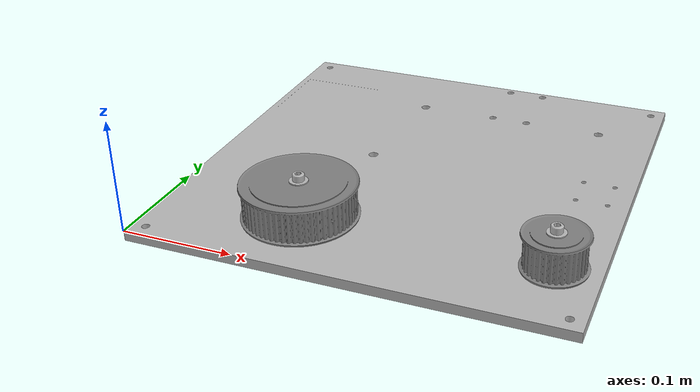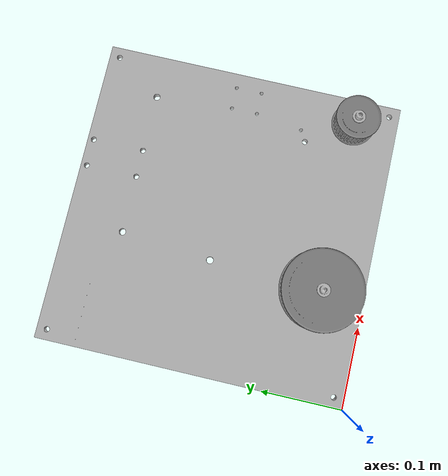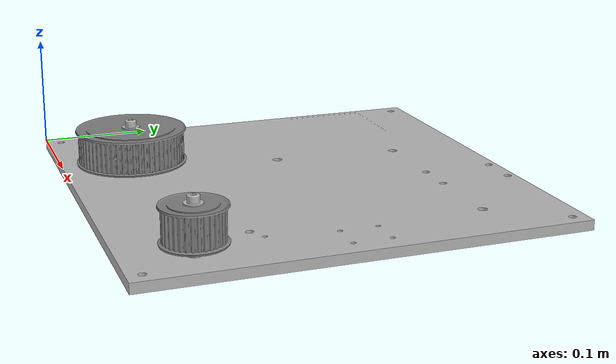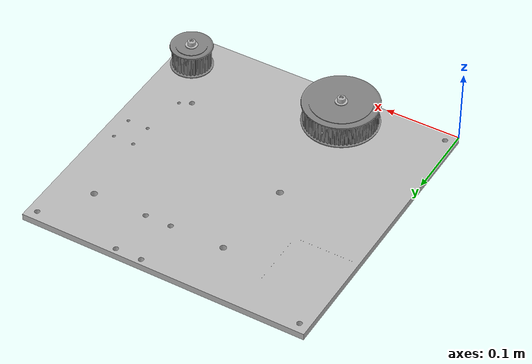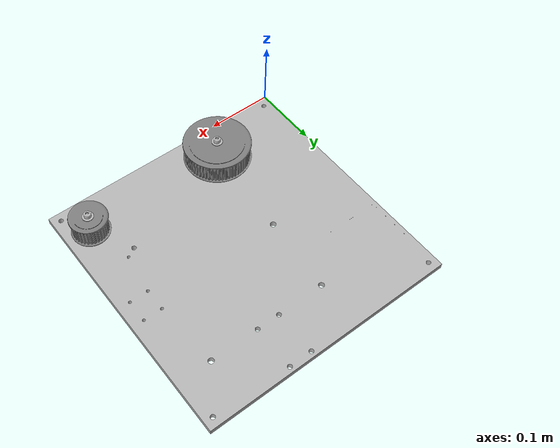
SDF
<?xml version='1.0' encoding='UTF-8'?>
<sdf version="1.7">
  <model name="timing_belt_task_board">
    <link name="board">
      <visual name="board">
        <pose>0 0 0 0 0 0</pose>
        <geometry>
          <mesh>
            <uri>timing_belt_task_board.obj</uri>
          </mesh>
        </geometry>
      </visual>
      <collision name="board_collision">
        <pose>0.192 0.192 -0.005 0 0 0</pose>
        <geometry>
          <box>
            <size>0.384 0.384 0.01</size>
          </box>
        </geometry>
        <drake:proximity_properties>
          <drake:mu_dynamic>1.5</drake:mu_dynamic>
          <drake:mu_static>1.5</drake:mu_static>
          <drake:hydroelastic_modulus>1e6</drake:hydroelastic_modulus>
          <drake:hunt_crossley_dissipation>5</drake:hunt_crossley_dissipation>
          <drake:compliant_hydroelastic/>
        </drake:proximity_properties>
      </collision>
    </link>
    <link name="small_timing_pulley">
      <inertial>
        <pose>0 0 0 0 0 0</pose>
        <mass>0.3</mass>
        <inertia>
          <ixx>3.06677e-05</ixx>
          <iyy>3.0667375e-05</iyy>
          <izz>6.0454911e-05</izz>
          <ixy>5.7518697e-14</ixy>
          <ixz>1.6724428e-11</ixz>
          <iyz>-1.9003215e-11</iyz>
        </inertia>
      </inertial>
      <visual name="small_timing_pulley">
        <pose>0.348 0.058 0.041 0 0 0</pose>
        <geometry>
          <mesh>
            <uri>timing_belt_small_pulley.obj</uri>
          </mesh>
        </geometry>
        <material>
          <diffuse>0.5 0.5 0.5 1</diffuse>
        </material>
      </visual>
      <collision name="small_timing_pulley_body">
        <pose>0.348 0.058 0.025 0 0 0</pose>
        <geometry>
          <cylinder>
            <length>0.027</length>
            <radius>0.02505</radius>
          </cylinder>
        </geometry>
        <drake:proximity_properties>
          <drake:mu_dynamic>1.5</drake:mu_dynamic>
          <drake:mu_static>1.5</drake:mu_static>
          <drake:hydroelastic_modulus>1e6</drake:hydroelastic_modulus>
          <drake:hunt_crossley_dissipation>5</drake:hunt_crossley_dissipation>
          <drake:compliant_hydroelastic/>
          <drake:mesh_resolution_hint>0.02</drake:mesh_resolution_hint>
        </drake:proximity_properties>
      </collision>
      <collision name="small_timing_pulley_top_plate">
        <pose>0.348 0.058 0.03975 0 0 0</pose>
        <geometry>
          <cylinder>
            <length>0.0025</length>
            <radius>0.0275</radius>
          </cylinder>
        </geometry>
        <drake:proximity_properties>
          <drake:mu_dynamic>1.5</drake:mu_dynamic>
          <drake:mu_static>1.5</drake:mu_static>
          <drake:hydroelastic_modulus>1e6</drake:hydroelastic_modulus>
          <drake:hunt_crossley_dissipation>5</drake:hunt_crossley_dissipation>
          <drake:compliant_hydroelastic/>
          <drake:mesh_resolution_hint>0.02</drake:mesh_resolution_hint>
        </drake:proximity_properties>
      </collision>
      <collision name="small_timing_pulley_bottom_plate">
        <pose>0.348 0.058 0.01025 0 0 0</pose>
        <geometry>
          <cylinder>
            <length>0.0025</length>
            <radius>0.0275</radius>
          </cylinder>
        </geometry>
        <drake:proximity_properties>
          <drake:mu_dynamic>1.5</drake:mu_dynamic>
          <drake:mu_static>1.5</drake:mu_static>
          <drake:hydroelastic_modulus>1e6</drake:hydroelastic_modulus>
          <drake:hunt_crossley_dissipation>5</drake:hunt_crossley_dissipation>
          <drake:compliant_hydroelastic/>
          <drake:mesh_resolution_hint>0.02</drake:mesh_resolution_hint>
        </drake:proximity_properties>
      </collision>
      <collision name="screw_head">
        <pose>0.348 0.058 0.045 0 0 0</pose>
        <geometry>
          <cylinder>
            <length>0.006</length>
            <radius>0.005</radius>
          </cylinder>
        </geometry>
        <drake:proximity_properties>
          <drake:mu_dynamic>1.5</drake:mu_dynamic>
          <drake:mu_static>1.5</drake:mu_static>
          <drake:hydroelastic_modulus>1e6</drake:hydroelastic_modulus>
          <drake:hunt_crossley_dissipation>5</drake:hunt_crossley_dissipation>
          <drake:compliant_hydroelastic/>
          <drake:mesh_resolution_hint>0.02</drake:mesh_resolution_hint>
        </drake:proximity_properties>
      </collision>
    </link>
    <link name="large_timing_pulley">
      <inertial>
        <pose>0 0 0 0 0 0</pose>
        <mass>0.5</mass>
        <inertia>
          <ixx>3.06677e-05</ixx>
          <iyy>3.0667375e-05</iyy>
          <izz>6.0454911e-05</izz>
          <ixy>5.7518697e-14</ixy>
          <ixz>1.6724428e-11</ixz>
          <iyz>-1.9003215e-11</iyz>
        </inertia>
      </inertial>
      <visual name="large_timing_pulley">
        <pose>0.134 0.058 0.043 0 0 0</pose>
        <geometry>
          <mesh>
            <uri>timing_belt_large_pulley.obj</uri>
          </mesh>
        </geometry>
        <material>
          <diffuse>0.5 0.5 0.5 1</diffuse>
        </material>
      </visual>
      <collision name="large_timing_pulley_body">
        <pose>0.134 0.058 0.027 0 0 0</pose>
        <geometry>
          <cylinder>
            <length>0.027</length>
            <radius>0.047325</radius>
          </cylinder>
        </geometry>
        <drake:proximity_properties>
          <drake:mu_dynamic>1.5</drake:mu_dynamic>
          <drake:mu_static>1.5</drake:mu_static>
          <drake:hydroelastic_modulus>1e6</drake:hydroelastic_modulus>
          <drake:hunt_crossley_dissipation>5</drake:hunt_crossley_dissipation>
          <drake:compliant_hydroelastic/>
          <drake:mesh_resolution_hint>0.02</drake:mesh_resolution_hint>
        </drake:proximity_properties>
      </collision>
      <collision name="large_timing_pulley_top_plate">
        <pose>0.134 0.058 0.04175 0 0 0</pose>
        <geometry>
          <cylinder>
            <length>0.0025</length>
            <radius>0.0495</radius>
          </cylinder>
        </geometry>
        <drake:proximity_properties>
          <drake:mu_dynamic>1.5</drake:mu_dynamic>
          <drake:mu_static>1.5</drake:mu_static>
          <drake:hydroelastic_modulus>1e6</drake:hydroelastic_modulus>
          <drake:hunt_crossley_dissipation>5</drake:hunt_crossley_dissipation>
          <drake:compliant_hydroelastic/>
          <drake:mesh_resolution_hint>0.02</drake:mesh_resolution_hint>
        </drake:proximity_properties>
      </collision>
      <collision name="large_timing_pulley_bottom_plate">
        <pose>0.134 0.058 0.01225 0 0 0</pose>
        <geometry>
          <cylinder>
            <length>0.0025</length>
            <radius>0.0495</radius>
          </cylinder>
        </geometry>
        <drake:proximity_properties>
          <drake:mu_dynamic>1.5</drake:mu_dynamic>
          <drake:mu_static>1.5</drake:mu_static>
          <drake:hydroelastic_modulus>1e6</drake:hydroelastic_modulus>
          <drake:hunt_crossley_dissipation>5</drake:hunt_crossley_dissipation>
          <drake:compliant_hydroelastic/>
          <drake:mesh_resolution_hint>0.02</drake:mesh_resolution_hint>
        </drake:proximity_properties>
      </collision>
      <collision name="screw_head">
        <pose>0.134 0.058 0.047 0 0 0</pose>
        <geometry>
          <cylinder>
            <length>0.006</length>
            <radius>0.005</radius>
          </cylinder>
        </geometry>
        <drake:proximity_properties>
          <drake:mu_dynamic>1.5</drake:mu_dynamic>
          <drake:mu_static>1.5</drake:mu_static>
          <drake:hydroelastic_modulus>1e6</drake:hydroelastic_modulus>
          <drake:hunt_crossley_dissipation>5</drake:hunt_crossley_dissipation>
          <drake:compliant_hydroelastic/>
          <drake:mesh_resolution_hint>0.02</drake:mesh_resolution_hint>
        </drake:proximity_properties>
      </collision>
    </link>
    <joint name="small_timing_pulley_joint" type="fixed">
      <parent>board</parent>
      <child>small_timing_pulley</child>
      <pose>0 0 0 0 0 0</pose>
      <axis>
        <xyz>0 0 1</xyz>
      </axis>
    </joint>
    <joint name="large_timing_pulley_joint" type="fixed">
      <parent>board</parent>
      <child>large_timing_pulley</child>
      <pose>0 0 0 0 0 0</pose>
      <axis>
        <xyz>0 0 1</xyz>
      </axis>
    </joint>
  </model>
</sdf>
